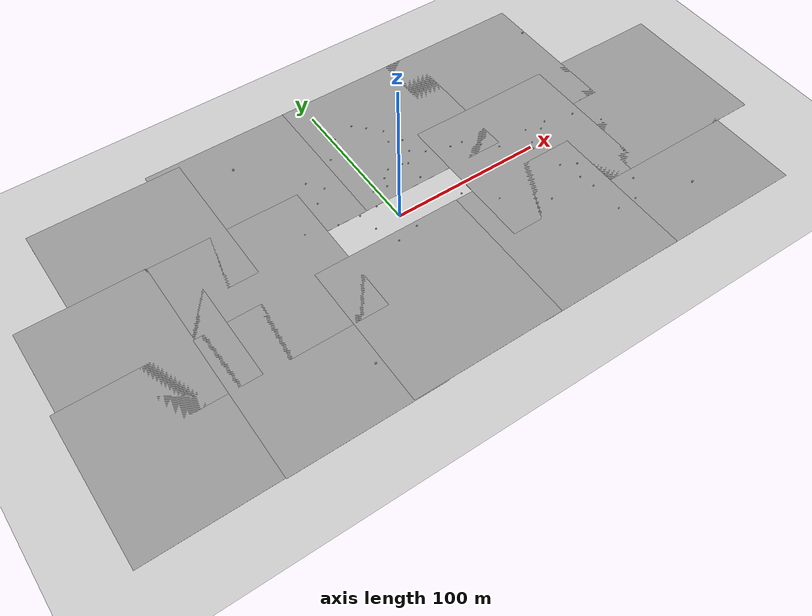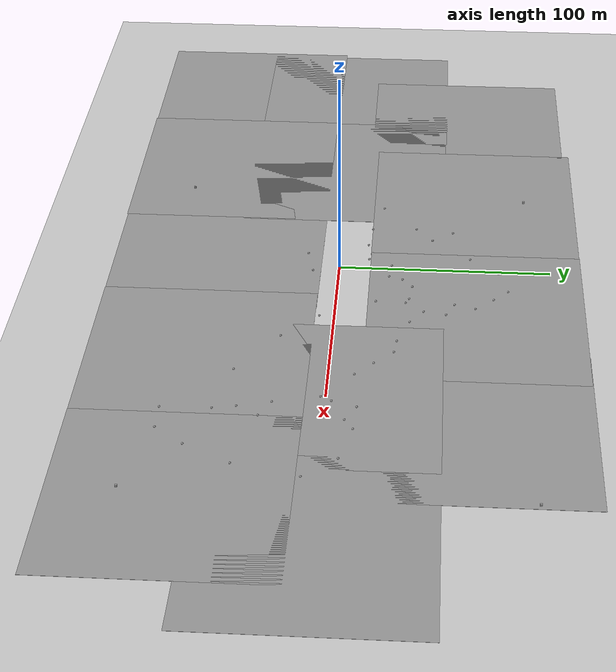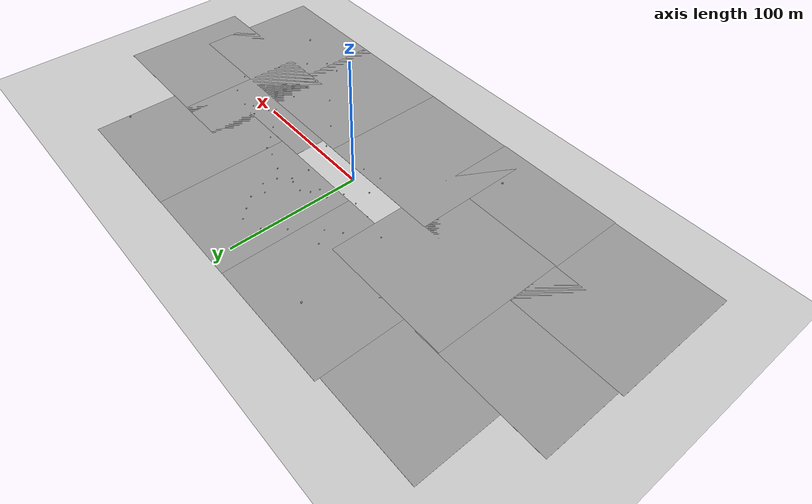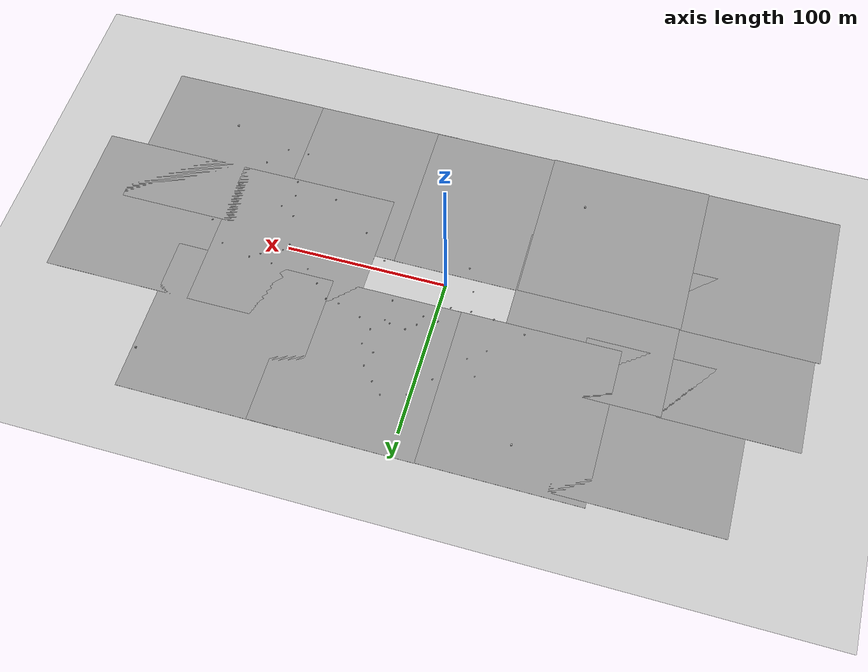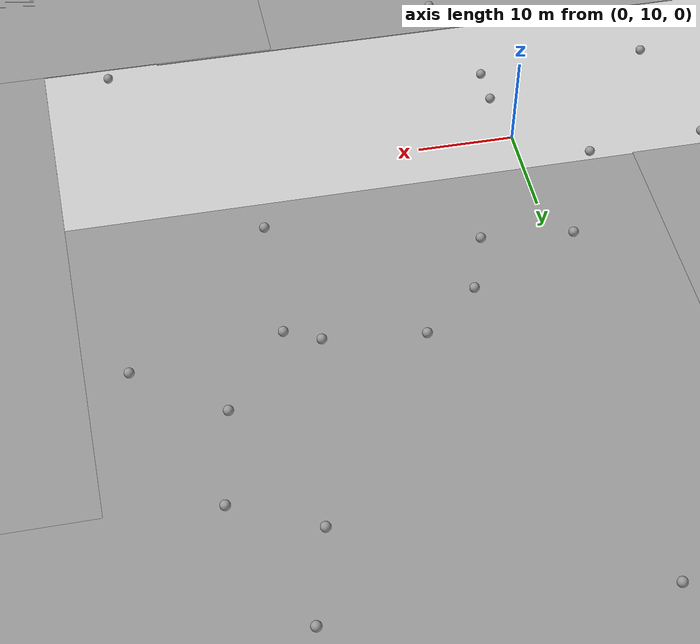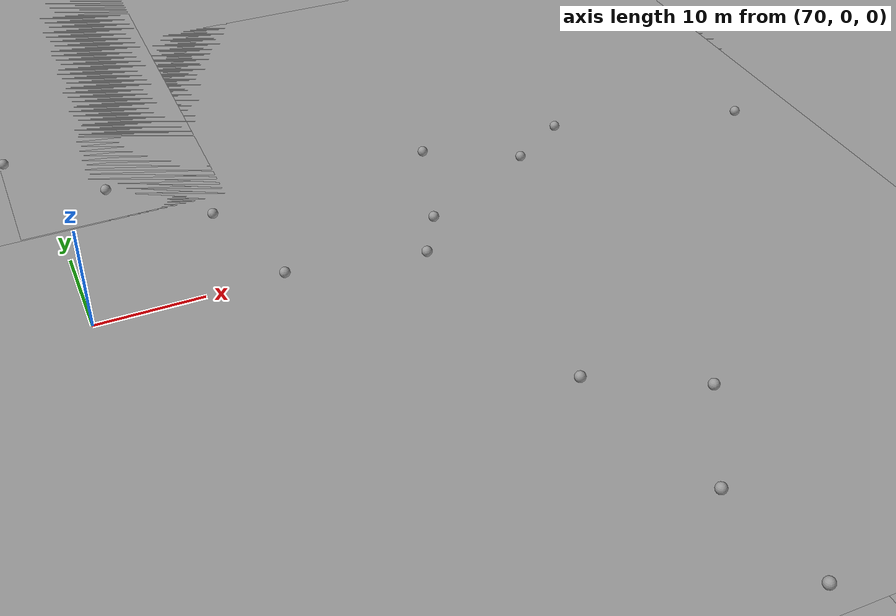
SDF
<sdf version="1.7">
 <world name="default">
  <light name="sun" type="directional">
   <pose>0 0 10 0 -0 0</pose>
   <diffuse>0.8 0.8 0.8 1</diffuse>
   <specular>0.2 0.2 0.2 1</specular>
   <attenuation>
    <range>1000</range>
    <constant>0.9</constant>
    <linear>0.01</linear>
    <quadratic>0.001</quadratic>
   </attenuation>
   <direction>-0.5 0.1 -0.9</direction>
   <spot><inner_angle>0</inner_angle><outer_angle>0</outer_angle><falloff>0</falloff></spot>
  </light>
  <model name="ground_plane">
   <static>1</static>
   <link name="link">
    <collision name="collision">
     <geometry><plane><normal>0 0 1</normal><size>100 100</size></plane></geometry>
     <surface><friction><ode><mu>100</mu><mu2>50</mu2></ode></friction></surface>
    </collision>
    <visual name="visual">
     <cast_shadows>0</cast_shadows>
     <geometry><plane><normal>0 0 1</normal><size>100 100</size></plane></geometry>
     <material>
      <script><uri>file://media/materials/scripts/gazebo.material</uri><name>Gazebo/Grey</name></script>
     </material>
    </visual>
   </link>
  </model>
  <gravity>0 0 -9.8</gravity>
  <magnetic_field>6e-06 2.3e-05 -4.2e-05</magnetic_field>
  <atmosphere type="adiabatic"/>
  <physics name="default_physics" default="0" type="ode">
   <max_step_size>0.001</max_step_size>
   <real_time_factor>1</real_time_factor>
   <real_time_update_rate>1000</real_time_update_rate>
  </physics>
  <scene><ambient>0.4 0.4 0.4 1</ambient><background>0.7 0.7 0.7 1</background><shadows>1</shadows></scene>
  <audio><device>default</device></audio>
  <spherical_coordinates>
   <surface_model>EARTH_WGS84</surface_model>
   <latitude_deg>0</latitude_deg>
   <longitude_deg>0</longitude_deg>
   <elevation>0</elevation>
   <heading_deg>0</heading_deg>
  </spherical_coordinates>
  <model name="ground_plane_0">
   <static>1</static>
   <link name="link">
    <collision name="collision">
     <geometry><plane><normal>0 0 1</normal><size>100 100</size></plane></geometry>
     <surface>
      <contact><collide_bitmask>65535</collide_bitmask></contact>
      <friction><ode><mu>100</mu><mu2>50</mu2></ode></friction>
     </surface>
    </collision>
    <visual name="visual">
     <cast_shadows>0</cast_shadows>
     <geometry><plane><normal>0 0 1</normal><size>100 100</size></plane></geometry>
     <material>
      <script><uri>file://media/materials/scripts/gazebo.material</uri><name>Gazebo/Grey</name></script>
     </material>
    </visual>
   </link>
   <pose>97.4903 0.04793 0 0 -0 0</pose>
  </model>
  <model name="ground_plane_1">
   <static>1</static>
   <link name="link">
    <collision name="collision">
     <geometry><plane><normal>0 0 1</normal><size>100 100</size></plane></geometry>
     <surface>
      <contact><collide_bitmask>65535</collide_bitmask></contact>
      <friction><ode><mu>100</mu><mu2>50</mu2></ode></friction>
     </surface>
    </collision>
    <visual name="visual">
     <cast_shadows>0</cast_shadows>
     <geometry><plane><normal>0 0 1</normal><size>100 100</size></plane></geometry>
     <material>
      <script><uri>file://media/materials/scripts/gazebo.material</uri><name>Gazebo/Grey</name></script>
     </material>
    </visual>
   </link>
   <pose>189.307 -0.037702 0 0 -0 0</pose>
  </model>
  <model name="ground_plane_2">
   <static>1</static>
   <link name="link">
    <collision name="collision">
     <geometry><plane><normal>0 0 1</normal><size>100 100</size></plane></geometry>
     <surface>
      <contact><collide_bitmask>65535</collide_bitmask></contact>
      <friction><ode><mu>100</mu><mu2>50</mu2></ode></friction>
     </surface>
    </collision>
    <visual name="visual">
     <cast_shadows>0</cast_shadows>
     <geometry><plane><normal>0 0 1</normal><size>100 100</size></plane></geometry>
     <material>
      <script><uri>file://media/materials/scripts/gazebo.material</uri><name>Gazebo/Grey</name></script>
     </material>
    </visual>
   </link>
   <pose>-91.6707 -0.132647 0 0 -0 0</pose>
  </model>
  <model name="ground_plane_3">
   <static>1</static>
   <link name="link">
    <collision name="collision">
     <geometry><plane><normal>0 0 1</normal><size>100 100</size></plane></geometry>
     <surface>
      <contact><collide_bitmask>65535</collide_bitmask></contact>
      <friction><ode><mu>100</mu><mu2>50</mu2></ode></friction>
     </surface>
    </collision>
    <visual name="visual">
     <cast_shadows>0</cast_shadows>
     <geometry><plane><normal>0 0 1</normal><size>100 100</size></plane></geometry>
     <material>
      <script><uri>file://media/materials/scripts/gazebo.material</uri><name>Gazebo/Grey</name></script>
     </material>
    </visual>
   </link>
   <pose>-171.755 0.416002 0 0 -0 0</pose>
  </model>
  <model name="ground_plane_4">
   <static>1</static>
   <link name="link">
    <collision name="collision">
     <geometry><plane><normal>0 0 1</normal><size>100 100</size></plane></geometry>
     <surface>
      <contact><collide_bitmask>65535</collide_bitmask></contact>
      <friction><ode><mu>100</mu><mu2>50</mu2></ode></friction>
     </surface>
    </collision>
    <visual name="visual">
     <cast_shadows>0</cast_shadows>
     <geometry><plane><normal>0 0 1</normal><size>100 100</size></plane></geometry>
     <material>
      <script><uri>file://media/materials/scripts/gazebo.material</uri><name>Gazebo/Grey</name></script>
     </material>
    </visual>
   </link>
   <pose>-92.4556 -59.0521 0 0 -0 0</pose>
  </model>
  <model name="ground_plane_5">
   <static>1</static>
   <link name="link">
    <collision name="collision">
     <geometry><plane><normal>0 0 1</normal><size>100 100</size></plane></geometry>
     <surface>
      <contact><collide_bitmask>65535</collide_bitmask></contact>
      <friction><ode><mu>100</mu><mu2>50</mu2></ode></friction>
     </surface>
    </collision>
    <visual name="visual">
     <cast_shadows>0</cast_shadows>
     <geometry><plane><normal>0 0 1</normal><size>100 100</size></plane></geometry>
     <material>
      <script><uri>file://media/materials/scripts/gazebo.material</uri><name>Gazebo/Grey</name></script>
     </material>
    </visual>
   </link>
   <pose>-14.8442 -58.6163 0 0 -0 0</pose>
  </model>
  <model name="ground_plane_6">
   <static>1</static>
   <link name="link">
    <collision name="collision">
     <geometry><plane><normal>0 0 1</normal><size>100 100</size></plane></geometry>
     <surface>
      <contact><collide_bitmask>65535</collide_bitmask></contact>
      <friction><ode><mu>100</mu><mu2>50</mu2></ode></friction>
     </surface>
    </collision>
    <visual name="visual">
     <cast_shadows>0</cast_shadows>
     <geometry><plane><normal>0 0 1</normal><size>100 100</size></plane></geometry>
     <material>
      <script><uri>file://media/materials/scripts/gazebo.material</uri><name>Gazebo/Grey</name></script>
     </material>
    </visual>
   </link>
   <pose>72.4819 -58.7857 0 0 -0 0</pose>
  </model>
  <model name="ground_plane_7">
   <static>1</static>
   <link name="link">
    <collision name="collision">
     <geometry><plane><normal>0 0 1</normal><size>100 100</size></plane></geometry>
     <surface>
      <contact><collide_bitmask>65535</collide_bitmask></contact>
      <friction><ode><mu>100</mu><mu2>50</mu2></ode></friction>
     </surface>
    </collision>
    <visual name="visual">
     <cast_shadows>0</cast_shadows>
     <geometry><plane><normal>0 0 1</normal><size>100 100</size></plane></geometry>
     <material>
      <script><uri>file://media/materials/scripts/gazebo.material</uri><name>Gazebo/Grey</name></script>
     </material>
    </visual>
   </link>
   <pose>164.143 -58.8841 0 0 -0 0</pose>
  </model>
  <model name="ground_plane_8">
   <static>1</static>
   <link name="link">
    <collision name="collision">
     <geometry><plane><normal>0 0 1</normal><size>100 100</size></plane></geometry>
     <surface>
      <contact><collide_bitmask>65535</collide_bitmask></contact>
      <friction><ode><mu>100</mu><mu2>50</mu2></ode></friction>
     </surface>
    </collision>
    <visual name="visual">
     <cast_shadows>0</cast_shadows>
     <geometry><plane><normal>0 0 1</normal><size>100 100</size></plane></geometry>
     <material>
      <script><uri>file://media/materials/scripts/gazebo.material</uri><name>Gazebo/Grey</name></script>
     </material>
    </visual>
   </link>
   <pose>116.309 64.9552 0 0 -0 0</pose>
  </model>
  <model name="ground_plane_9">
   <static>1</static>
   <link name="link">
    <collision name="collision">
     <geometry><plane><normal>0 0 1</normal><size>100 100</size></plane></geometry>
     <surface>
      <contact><collide_bitmask>65535</collide_bitmask></contact>
      <friction><ode><mu>100</mu><mu2>50</mu2></ode></friction>
     </surface>
    </collision>
    <visual name="visual">
     <cast_shadows>0</cast_shadows>
     <geometry><plane><normal>0 0 1</normal><size>100 100</size></plane></geometry>
     <material>
      <script><uri>file://media/materials/scripts/gazebo.material</uri><name>Gazebo/Grey</name></script>
     </material>
    </visual>
   </link>
   <pose>36.0215 64.7784 0 0 -0 0</pose>
  </model>
  <model name="ground_plane_10">
   <static>1</static>
   <link name="link">
    <collision name="collision">
     <geometry><plane><normal>0 0 1</normal><size>100 100</size></plane></geometry>
     <surface>
      <contact><collide_bitmask>65535</collide_bitmask></contact>
      <friction><ode><mu>100</mu><mu2>50</mu2></ode></friction>
     </surface>
    </collision>
    <visual name="visual">
     <cast_shadows>0</cast_shadows>
     <geometry><plane><normal>0 0 1</normal><size>100 100</size></plane></geometry>
     <material>
      <script><uri>file://media/materials/scripts/gazebo.material</uri><name>Gazebo/Grey</name></script>
     </material>
    </visual>
   </link>
   <pose>-61.7703 64.6166 0 0 -0 0</pose>
  </model>
  <model name="ground_plane_11">
   <static>1</static>
   <link name="link">
    <collision name="collision">
     <geometry><plane><normal>0 0 1</normal><size>100 100</size></plane></geometry>
     <surface>
      <contact><collide_bitmask>65535</collide_bitmask></contact>
      <friction><ode><mu>100</mu><mu2>50</mu2></ode></friction>
     </surface>
    </collision>
    <visual name="visual">
     <cast_shadows>0</cast_shadows>
     <geometry><plane><normal>0 0 1</normal><size>100 100</size></plane></geometry>
     <material>
      <script><uri>file://media/materials/scripts/gazebo.material</uri><name>Gazebo/Grey</name></script>
     </material>
    </visual>
   </link>
   <pose>-140.039 61.2243 0 0 -0 0</pose>
  </model>
  <model name="ground_plane_12">
   <static>1</static>
   <link name="link">
    <collision name="collision">
     <geometry><plane><normal>0 0 1</normal><size>100 100</size></plane></geometry>
     <surface>
      <contact><collide_bitmask>65535</collide_bitmask></contact>
      <friction><ode><mu>100</mu><mu2>50</mu2></ode></friction>
     </surface>
    </collision>
    <visual name="visual">
     <cast_shadows>0</cast_shadows>
     <geometry><plane><normal>0 0 1</normal><size>100 100</size></plane></geometry>
     <material>
      <script><uri>file://media/materials/scripts/gazebo.material</uri><name>Gazebo/Grey</name></script>
     </material>
    </visual>
   </link>
   <pose>-174.805 -58.5343 0 0 -0 0</pose>
  </model>
  <model name="unit_sphere">
   <pose>0.873686 4.14564 0.499991 0 -0 0</pose>
   <link name="link">
    <inertial>
     <mass>1</mass>
     <inertia><ixx>0.1</ixx><ixy>0</ixy><ixz>0</ixz><iyy>0.1</iyy><iyz>0</iyz><izz>0.1</izz></inertia>
    </inertial>
    <collision name="collision"><geometry><sphere><radius>0.5</radius></sphere></geometry></collision>
    <visual name="visual">
     <geometry><sphere><radius>0.5</radius></sphere></geometry>
     <material>
      <script><name>Gazebo/Grey</name><uri>file://media/materials/scripts/gazebo.material</uri></script>
     </material>
    </visual>
   </link>
  </model>
  <model name="unit_sphere_0">
   <pose>-7.28606 14.0254 0.499991 0 -0 0</pose>
   <link name="link">
    <inertial>
     <mass>1</mass>
     <inertia><ixx>0.1</ixx><ixy>0</ixy><ixz>0</ixz><iyy>0.1</iyy><iyz>0</iyz><izz>0.1</izz></inertia>
    </inertial>
    <collision name="collision"><geometry><sphere><radius>0.5</radius></sphere></geometry></collision>
    <visual name="visual">
     <geometry><sphere><radius>0.5</radius></sphere></geometry>
     <material>
      <script><name>Gazebo/Grey</name><uri>file://media/materials/scripts/gazebo.material</uri></script>
     </material>
    </visual>
   </link>
  </model>
  <model name="unit_sphere_1">
   <pose>-2.34583 24.9268 0.499991 0 -0 0</pose>
   <link name="link">
    <inertial>
     <mass>1</mass>
     <inertia><ixx>0.1</ixx><ixy>0</ixy><ixz>0</ixz><iyy>0.1</iyy><iyz>0</iyz><izz>0.1</izz></inertia>
    </inertial>
    <collision name="collision"><geometry><sphere><radius>0.5</radius></sphere></geometry></collision>
    <visual name="visual">
     <geometry><sphere><radius>0.5</radius></sphere></geometry>
     <material>
      <script><name>Gazebo/Grey</name><uri>file://media/materials/scripts/gazebo.material</uri></script>
     </material>
    </visual>
   </link>
  </model>
  <model name="unit_sphere_2">
   <pose>6.94707 23.9704 0.499991 0 -0 0</pose>
   <link name="link">
    <inertial>
     <mass>1</mass>
     <inertia><ixx>0.1</ixx><ixy>0</ixy><ixz>0</ixz><iyy>0.1</iyy><iyz>0</iyz><izz>0.1</izz></inertia>
    </inertial>
    <collision name="collision"><geometry><sphere><radius>0.5</radius></sphere></geometry></collision>
    <visual name="visual">
     <geometry><sphere><radius>0.5</radius></sphere></geometry>
     <material>
      <script><name>Gazebo/Grey</name><uri>file://media/materials/scripts/gazebo.material</uri></script>
     </material>
    </visual>
   </link>
  </model>
  <model name="unit_sphere_3">
   <pose>9.19688 30.3325 0.49999 0 -0 0</pose>
   <link name="link">
    <inertial>
     <mass>1</mass>
     <inertia><ixx>0.1</ixx><ixy>0</ixy><ixz>0</ixz><iyy>0.1</iyy><iyz>0</iyz><izz>0.1</izz></inertia>
    </inertial>
    <collision name="collision"><geometry><sphere><radius>0.5</radius></sphere></geometry></collision>
    <visual name="visual">
     <geometry><sphere><radius>0.5</radius></sphere></geometry>
     <material>
      <script><name>Gazebo/Grey</name><uri>file://media/materials/scripts/gazebo.material</uri></script>
     </material>
    </visual>
   </link>
  </model>
  <model name="unit_sphere_4">
   <pose>14.987 35.0732 0.499991 0 -0 0</pose>
   <link name="link">
    <inertial>
     <mass>1</mass>
     <inertia><ixx>0.1</ixx><ixy>0</ixy><ixz>0</ixz><iyy>0.1</iyy><iyz>0</iyz><izz>0.1</izz></inertia>
    </inertial>
    <collision name="collision"><geometry><sphere><radius>0.5</radius></sphere></geometry></collision>
    <visual name="visual">
     <geometry><sphere><radius>0.5</radius></sphere></geometry>
     <material>
      <script><name>Gazebo/Grey</name><uri>file://media/materials/scripts/gazebo.material</uri></script>
     </material>
    </visual>
   </link>
  </model>
  <model name="unit_sphere_5">
   <pose>24.9475 33.9324 0.49999 0 -0 0</pose>
   <link name="link">
    <inertial>
     <mass>1</mass>
     <inertia><ixx>0.1</ixx><ixy>0</ixy><ixz>0</ixz><iyy>0.1</iyy><iyz>0</iyz><izz>0.1</izz></inertia>
    </inertial>
    <collision name="collision"><geometry><sphere><radius>0.5</radius></sphere></geometry></collision>
    <visual name="visual">
     <geometry><sphere><radius>0.5</radius></sphere></geometry>
     <material>
      <script><name>Gazebo/Grey</name><uri>file://media/materials/scripts/gazebo.material</uri></script>
     </material>
    </visual>
   </link>
  </model>
  <model name="unit_sphere_6">
   <pose>28.3708 32.3225 0.499991 0 -0 0</pose>
   <link name="link">
    <inertial>
     <mass>1</mass>
     <inertia><ixx>0.1</ixx><ixy>0</ixy><ixz>0</ixz><iyy>0.1</iyy><iyz>0</iyz><izz>0.1</izz></inertia>
    </inertial>
    <collision name="collision"><geometry><sphere><radius>0.5</radius></sphere></geometry></collision>
    <visual name="visual">
     <geometry><sphere><radius>0.5</radius></sphere></geometry>
     <material>
      <script><name>Gazebo/Grey</name><uri>file://media/materials/scripts/gazebo.material</uri></script>
     </material>
    </visual>
   </link>
  </model>
  <model name="unit_sphere_7">
   <pose>27.8325 18.4839 0.499991 0 -0 0</pose>
   <link name="link">
    <inertial>
     <mass>1</mass>
     <inertia><ixx>0.1</ixx><ixy>0</ixy><ixz>0</ixz><iyy>0.1</iyy><iyz>0</iyz><izz>0.1</izz></inertia>
    </inertial>
    <collision name="collision"><geometry><sphere><radius>0.5</radius></sphere></geometry></collision>
    <visual name="visual">
     <geometry><sphere><radius>0.5</radius></sphere></geometry>
     <material>
      <script><name>Gazebo/Grey</name><uri>file://media/materials/scripts/gazebo.material</uri></script>
     </material>
    </visual>
   </link>
  </model>
  <model name="unit_sphere_8">
   <pose>40.6852 -6.81454 0.499991 0 -0 0</pose>
   <link name="link">
    <inertial>
     <mass>1</mass>
     <inertia><ixx>0.1</ixx><ixy>0</ixy><ixz>0</ixz><iyy>0.1</iyy><iyz>0</iyz><izz>0.1</izz></inertia>
    </inertial>
    <collision name="collision"><geometry><sphere><radius>0.5</radius></sphere></geometry></collision>
    <visual name="visual">
     <geometry><sphere><radius>0.5</radius></sphere></geometry>
     <material>
      <script><name>Gazebo/Grey</name><uri>file://media/materials/scripts/gazebo.material</uri></script>
     </material>
    </visual>
   </link>
  </model>
  <model name="unit_sphere_9">
   <pose>57.2245 -23.1237 0.499991 0 -0 0</pose>
   <link name="link">
    <inertial>
     <mass>1</mass>
     <inertia><ixx>0.1</ixx><ixy>0</ixy><ixz>0</ixz><iyy>0.1</iyy><iyz>0</iyz><izz>0.1</izz></inertia>
    </inertial>
    <collision name="collision"><geometry><sphere><radius>0.5</radius></sphere></geometry></collision>
    <visual name="visual">
     <geometry><sphere><radius>0.5</radius></sphere></geometry>
     <material>
      <script><name>Gazebo/Grey</name><uri>file://media/materials/scripts/gazebo.material</uri></script>
     </material>
    </visual>
   </link>
  </model>
  <model name="unit_sphere_10">
   <pose>83.0947 -41.4276 0.499991 0 -0 0</pose>
   <link name="link">
    <inertial>
     <mass>1</mass>
     <inertia><ixx>0.1</ixx><ixy>0</ixy><ixz>0</ixz><iyy>0.1</iyy><iyz>0</iyz><izz>0.1</izz></inertia>
    </inertial>
    <collision name="collision"><geometry><sphere><radius>0.5</radius></sphere></geometry></collision>
    <visual name="visual">
     <geometry><sphere><radius>0.5</radius></sphere></geometry>
     <material>
      <script><name>Gazebo/Grey</name><uri>file://media/materials/scripts/gazebo.material</uri></script>
     </material>
    </visual>
   </link>
  </model>
  <model name="unit_sphere_11">
   <pose>105.108 -22.6742 0.499991 0 -0 0</pose>
   <link name="link">
    <inertial>
     <mass>1</mass>
     <inertia><ixx>0.1</ixx><ixy>0</ixy><ixz>0</ixz><iyy>0.1</iyy><iyz>0</iyz><izz>0.1</izz></inertia>
    </inertial>
    <collision name="collision"><geometry><sphere><radius>0.5</radius></sphere></geometry></collision>
    <visual name="visual">
     <geometry><sphere><radius>0.5</radius></sphere></geometry>
     <material>
      <script><name>Gazebo/Grey</name><uri>file://media/materials/scripts/gazebo.material</uri></script>
     </material>
    </visual>
   </link>
  </model>
  <model name="unit_sphere_12">
   <pose>114.612 -27.7405 0.499991 0 -0 0</pose>
   <link name="link">
    <inertial>
     <mass>1</mass>
     <inertia><ixx>0.1</ixx><ixy>0</ixy><ixz>0</ixz><iyy>0.1</iyy><iyz>0</iyz><izz>0.1</izz></inertia>
    </inertial>
    <collision name="collision"><geometry><sphere><radius>0.5</radius></sphere></geometry></collision>
    <visual name="visual">
     <geometry><sphere><radius>0.5</radius></sphere></geometry>
     <material>
      <script><name>Gazebo/Grey</name><uri>file://media/materials/scripts/gazebo.material</uri></script>
     </material>
    </visual>
   </link>
  </model>
  <model name="unit_sphere_13">
   <pose>108.83 -37.4611 0.499991 0 -0 0</pose>
   <link name="link">
    <inertial>
     <mass>1</mass>
     <inertia><ixx>0.1</ixx><ixy>0</ixy><ixz>0</ixz><iyy>0.1</iyy><iyz>0</iyz><izz>0.1</izz></inertia>
    </inertial>
    <collision name="collision"><geometry><sphere><radius>0.5</radius></sphere></geometry></collision>
    <visual name="visual">
     <geometry><sphere><radius>0.5</radius></sphere></geometry>
     <material>
      <script><name>Gazebo/Grey</name><uri>file://media/materials/scripts/gazebo.material</uri></script>
     </material>
    </visual>
   </link>
  </model>
  <model name="unit_sphere_14">
   <pose>110.755 -47.7004 0.499991 0 -0 0</pose>
   <link name="link">
    <inertial>
     <mass>1</mass>
     <inertia><ixx>0.1</ixx><ixy>0</ixy><ixz>0</ixz><iyy>0.1</iyy><iyz>0</iyz><izz>0.1</izz></inertia>
    </inertial>
    <collision name="collision"><geometry><sphere><radius>0.5</radius></sphere></geometry></collision>
    <visual name="visual">
     <geometry><sphere><radius>0.5</radius></sphere></geometry>
     <material>
      <script><name>Gazebo/Grey</name><uri>file://media/materials/scripts/gazebo.material</uri></script>
     </material>
    </visual>
   </link>
  </model>
  <model name="unit_sphere_15">
   <pose>111.287 -70.0037 0.499991 0 -0 0</pose>
   <link name="link">
    <inertial>
     <mass>1</mass>
     <inertia><ixx>0.1</ixx><ixy>0</ixy><ixz>0</ixz><iyy>0.1</iyy><iyz>0</iyz><izz>0.1</izz></inertia>
    </inertial>
    <collision name="collision"><geometry><sphere><radius>0.5</radius></sphere></geometry></collision>
    <visual name="visual">
     <geometry><sphere><radius>0.5</radius></sphere></geometry>
     <material>
      <script><name>Gazebo/Grey</name><uri>file://media/materials/scripts/gazebo.material</uri></script>
     </material>
    </visual>
   </link>
  </model>
  <model name="unit_sphere_16">
   <pose>124.76 -69.9648 0.499991 0 -0 0</pose>
   <link name="link">
    <inertial>
     <mass>1</mass>
     <inertia><ixx>0.1</ixx><ixy>0</ixy><ixz>0</ixz><iyy>0.1</iyy><iyz>0</iyz><izz>0.1</izz></inertia>
    </inertial>
    <collision name="collision"><geometry><sphere><radius>0.5</radius></sphere></geometry></collision>
    <visual name="visual">
     <geometry><sphere><radius>0.5</radius></sphere></geometry>
     <material>
      <script><name>Gazebo/Grey</name><uri>file://media/materials/scripts/gazebo.material</uri></script>
     </material>
    </visual>
   </link>
  </model>
  <model name="unit_sphere_17">
   <pose>134.987 -56.8676 0.499991 0 -0 0</pose>
   <link name="link">
    <inertial>
     <mass>1</mass>
     <inertia><ixx>0.1</ixx><ixy>0</ixy><ixz>0</ixz><iyy>0.1</iyy><iyz>0</iyz><izz>0.1</izz></inertia>
    </inertial>
    <collision name="collision"><geometry><sphere><radius>0.5</radius></sphere></geometry></collision>
    <visual name="visual">
     <geometry><sphere><radius>0.5</radius></sphere></geometry>
     <material>
      <script><name>Gazebo/Grey</name><uri>file://media/materials/scripts/gazebo.material</uri></script>
     </material>
    </visual>
   </link>
  </model>
  <model name="unit_sphere_18">
   <pose>146.049 -35.9428 0.499991 0 -0 0</pose>
   <link name="link">
    <inertial>
     <mass>1</mass>
     <inertia><ixx>0.1</ixx><ixy>0</ixy><ixz>0</ixz><iyy>0.1</iyy><iyz>0</iyz><izz>0.1</izz></inertia>
    </inertial>
    <collision name="collision"><geometry><sphere><radius>0.5</radius></sphere></geometry></collision>
    <visual name="visual">
     <geometry><sphere><radius>0.5</radius></sphere></geometry>
     <material>
      <script><name>Gazebo/Grey</name><uri>file://media/materials/scripts/gazebo.material</uri></script>
     </material>
    </visual>
   </link>
  </model>
  <model name="unit_sphere_19">
   <pose>152.699 -6.65424 0.499991 0 -0 0</pose>
   <link name="link">
    <inertial>
     <mass>1</mass>
     <inertia><ixx>0.1</ixx><ixy>0</ixy><ixz>0</ixz><iyy>0.1</iyy><iyz>0</iyz><izz>0.1</izz></inertia>
    </inertial>
    <collision name="collision"><geometry><sphere><radius>0.5</radius></sphere></geometry></collision>
    <visual name="visual">
     <geometry><sphere><radius>0.5</radius></sphere></geometry>
     <material>
      <script><name>Gazebo/Grey</name><uri>file://media/materials/scripts/gazebo.material</uri></script>
     </material>
    </visual>
   </link>
  </model>
  <model name="unit_sphere_20">
   <pose>140.655 7.75466 0.499991 0 -0 0</pose>
   <link name="link">
    <inertial>
     <mass>1</mass>
     <inertia><ixx>0.1</ixx><ixy>0</ixy><ixz>0</ixz><iyy>0.1</iyy><iyz>0</iyz><izz>0.1</izz></inertia>
    </inertial>
    <collision name="collision"><geometry><sphere><radius>0.5</radius></sphere></geometry></collision>
    <visual name="visual">
     <geometry><sphere><radius>0.5</radius></sphere></geometry>
     <material>
      <script><name>Gazebo/Grey</name><uri>file://media/materials/scripts/gazebo.material</uri></script>
     </material>
    </visual>
   </link>
  </model>
  <model name="unit_sphere_21">
   <pose>121.404 12.7055 0.499991 0 -0 0</pose>
   <link name="link">
    <inertial>
     <mass>1</mass>
     <inertia><ixx>0.1</ixx><ixy>0</ixy><ixz>0</ixz><iyy>0.1</iyy><iyz>0</iyz><izz>0.1</izz></inertia>
    </inertial>
    <collision name="collision"><geometry><sphere><radius>0.5</radius></sphere></geometry></collision>
    <visual name="visual">
     <geometry><sphere><radius>0.5</radius></sphere></geometry>
     <material>
      <script><name>Gazebo/Grey</name><uri>file://media/materials/scripts/gazebo.material</uri></script>
     </material>
    </visual>
   </link>
  </model>
  <model name="unit_sphere_22">
   <pose>115.46 8.84893 0.499991 0 -0 0</pose>
   <link name="link">
    <inertial>
     <mass>1</mass>
     <inertia><ixx>0.1</ixx><ixy>0</ixy><ixz>0</ixz><iyy>0.1</iyy><iyz>0</iyz><izz>0.1</izz></inertia>
    </inertial>
    <collision name="collision"><geometry><sphere><radius>0.5</radius></sphere></geometry></collision>
    <visual name="visual">
     <geometry><sphere><radius>0.5</radius></sphere></geometry>
     <material>
      <script><name>Gazebo/Grey</name><uri>file://media/materials/scripts/gazebo.material</uri></script>
     </material>
    </visual>
   </link>
  </model>
  <model name="unit_sphere_23">
   <pose>106.642 13.6283 0.49999 0 -0 0</pose>
   <link name="link">
    <inertial>
     <mass>1</mass>
     <inertia><ixx>0.1</ixx><ixy>0</ixy><ixz>0</ixz><iyy>0.1</iyy><iyz>0</iyz><izz>0.1</izz></inertia>
    </inertial>
    <collision name="collision"><geometry><sphere><radius>0.5</radius></sphere></geometry></collision>
    <visual name="visual">
     <geometry><sphere><radius>0.5</radius></sphere></geometry>
     <material>
      <script><name>Gazebo/Grey</name><uri>file://media/materials/scripts/gazebo.material</uri></script>
     </material>
    </visual>
   </link>
  </model>
  <model name="unit_sphere_24">
   <pose>103.109 2.62302 0.49999 0 -0 0</pose>
   <link name="link">
    <inertial>
     <mass>1</mass>
     <inertia><ixx>0.1</ixx><ixy>0</ixy><ixz>0</ixz><iyy>0.1</iyy><iyz>0</iyz><izz>0.1</izz></inertia>
    </inertial>
    <collision name="collision"><geometry><sphere><radius>0.5</radius></sphere></geometry></collision>
    <visual name="visual">
     <geometry><sphere><radius>0.5</radius></sphere></geometry>
     <material>
      <script><name>Gazebo/Grey</name><uri>file://media/materials/scripts/gazebo.material</uri></script>
     </material>
    </visual>
   </link>
  </model>
  <model name="unit_sphere_25">
   <pose>100.342 -2.1866 0.499991 0 -0 0</pose>
   <link name="link">
    <inertial>
     <mass>1</mass>
     <inertia><ixx>0.1</ixx><ixy>0</ixy><ixz>0</ixz><iyy>0.1</iyy><iyz>0</iyz><izz>0.1</izz></inertia>
    </inertial>
    <collision name="collision"><geometry><sphere><radius>0.5</radius></sphere></geometry></collision>
    <visual name="visual">
     <geometry><sphere><radius>0.5</radius></sphere></geometry>
     <material>
      <script><name>Gazebo/Grey</name><uri>file://media/materials/scripts/gazebo.material</uri></script>
     </material>
    </visual>
   </link>
  </model>
  <model name="unit_sphere_26">
   <pose>87.3383 -0.015186 0.499991 0 -0 0</pose>
   <link name="link">
    <inertial>
     <mass>1</mass>
     <inertia><ixx>0.1</ixx><ixy>0</ixy><ixz>0</ixz><iyy>0.1</iyy><iyz>0</iyz><izz>0.1</izz></inertia>
    </inertial>
    <collision name="collision"><geometry><sphere><radius>0.5</radius></sphere></geometry></collision>
    <visual name="visual">
     <geometry><sphere><radius>0.5</radius></sphere></geometry>
     <material>
      <script><name>Gazebo/Grey</name><uri>file://media/materials/scripts/gazebo.material</uri></script>
     </material>
    </visual>
   </link>
  </model>
  <model name="unit_sphere_27">
   <pose>83.8664 11.4387 0.499991 0 -0 0</pose>
   <link name="link">
    <inertial>
     <mass>1</mass>
     <inertia><ixx>0.1</ixx><ixy>0</ixy><ixz>0</ixz><iyy>0.1</iyy><iyz>0</iyz><izz>0.1</izz></inertia>
    </inertial>
    <collision name="collision"><geometry><sphere><radius>0.5</radius></sphere></geometry></collision>
    <visual name="visual">
     <geometry><sphere><radius>0.5</radius></sphere></geometry>
     <material>
      <script><name>Gazebo/Grey</name><uri>file://media/materials/scripts/gazebo.material</uri></script>
     </material>
    </visual>
   </link>
  </model>
  <model name="unit_sphere_28">
   <pose>75.2939 19.5249 0.499991 0 -0 0</pose>
   <link name="link">
    <inertial>
     <mass>1</mass>
     <inertia><ixx>0.1</ixx><ixy>0</ixy><ixz>0</ixz><iyy>0.1</iyy><iyz>0</iyz><izz>0.1</izz></inertia>
    </inertial>
    <collision name="collision"><geometry><sphere><radius>0.5</radius></sphere></geometry></collision>
    <visual name="visual">
     <geometry><sphere><radius>0.5</radius></sphere></geometry>
     <material>
      <script><name>Gazebo/Grey</name><uri>file://media/materials/scripts/gazebo.material</uri></script>
     </material>
    </visual>
   </link>
  </model>
  <model name="unit_sphere_29">
   <pose>66.7602 28.1588 0.499991 0 -0 0</pose>
   <link name="link">
    <inertial>
     <mass>1</mass>
     <inertia><ixx>0.1</ixx><ixy>0</ixy><ixz>0</ixz><iyy>0.1</iyy><iyz>0</iyz><izz>0.1</izz></inertia>
    </inertial>
    <collision name="collision"><geometry><sphere><radius>0.5</radius></sphere></geometry></collision>
    <visual name="visual">
     <geometry><sphere><radius>0.5</radius></sphere></geometry>
     <material>
      <script><name>Gazebo/Grey</name><uri>file://media/materials/scripts/gazebo.material</uri></script>
     </material>
    </visual>
   </link>
  </model>
  <model name="unit_sphere_30">
   <pose>58.4101 29.1567 0.499991 0 -0 0</pose>
   <link name="link">
    <inertial>
     <mass>1</mass>
     <inertia><ixx>0.1</ixx><ixy>0</ixy><ixz>0</ixz><iyy>0.1</iyy><iyz>0</iyz><izz>0.1</izz></inertia>
    </inertial>
    <collision name="collision"><geometry><sphere><radius>0.5</radius></sphere></geometry></collision>
    <visual name="visual">
     <geometry><sphere><radius>0.5</radius></sphere></geometry>
     <material>
      <script><name>Gazebo/Grey</name><uri>file://media/materials/scripts/gazebo.material</uri></script>
     </material>
    </visual>
   </link>
  </model>
  <model name="unit_sphere_31">
   <pose>43.3144 34.5903 0.499991 0 -0 0</pose>
   <link name="link">
    <inertial>
     <mass>1</mass>
     <inertia><ixx>0.1</ixx><ixy>0</ixy><ixz>0</ixz><iyy>0.1</iyy><iyz>0</iyz><izz>0.1</izz></inertia>
    </inertial>
    <collision name="collision"><geometry><sphere><radius>0.5</radius></sphere></geometry></collision>
    <visual name="visual">
     <geometry><sphere><radius>0.5</radius></sphere></geometry>
     <material>
      <script><name>Gazebo/Grey</name><uri>file://media/materials/scripts/gazebo.material</uri></script>
     </material>
    </visual>
   </link>
  </model>
  <model name="unit_sphere_32">
   <pose>34.9304 40.7192 0.49999 0 -0 0</pose>
   <link name="link">
    <inertial>
     <mass>1</mass>
     <inertia><ixx>0.1</ixx><ixy>0</ixy><ixz>0</ixz><iyy>0.1</iyy><iyz>0</iyz><izz>0.1</izz></inertia>
    </inertial>
    <collision name="collision"><geometry><sphere><radius>0.5</radius></sphere></geometry></collision>
    <visual name="visual">
     <geometry><sphere><radius>0.5</radius></sphere></geometry>
     <material>
      <script><name>Gazebo/Grey</name><uri>file://media/materials/scripts/gazebo.material</uri></script>
     </material>
    </visual>
   </link>
  </model>
  <model name="unit_sphere_33">
   <pose>36.8274 51.0473 0.499991 0 -0 0</pose>
   <link name="link">
    <inertial>
     <mass>1</mass>
     <inertia><ixx>0.1</ixx><ixy>0</ixy><ixz>0</ixz><iyy>0.1</iyy><iyz>0</iyz><izz>0.1</izz></inertia>
    </inertial>
    <collision name="collision"><geometry><sphere><radius>0.5</radius></sphere></geometry></collision>
    <visual name="visual">
     <geometry><sphere><radius>0.5</radius></sphere></geometry>
     <material>
      <script><name>Gazebo/Grey</name><uri>file://media/materials/scripts/gazebo.material</uri></script>
     </material>
    </visual>
   </link>
  </model>
  <model name="unit_sphere_34">
   <pose>28.6442 54.9434 0.499991 0 -0 0</pose>
   <link name="link">
    <inertial>
     <mass>1</mass>
     <inertia><ixx>0.1</ixx><ixy>0</ixy><ixz>0</ixz><iyy>0.1</iyy><iyz>0</iyz><izz>0.1</izz></inertia>
    </inertial>
    <collision name="collision"><geometry><sphere><radius>0.5</radius></sphere></geometry></collision>
    <visual name="visual">
     <geometry><sphere><radius>0.5</radius></sphere></geometry>
     <material>
      <script><name>Gazebo/Grey</name><uri>file://media/materials/scripts/gazebo.material</uri></script>
     </material>
    </visual>
   </link>
  </model>
  <model name="unit_sphere_35">
   <pose>31.2863 64.5017 0.499991 0 -0 0</pose>
   <link name="link">
    <inertial>
     <mass>1</mass>
     <inertia><ixx>0.1</ixx><ixy>0</ixy><ixz>0</ixz><iyy>0.1</iyy><iyz>0</iyz><izz>0.1</izz></inertia>
    </inertial>
    <collision name="collision"><geometry><sphere><radius>0.5</radius></sphere></geometry></collision>
    <visual name="visual">
     <geometry><sphere><radius>0.5</radius></sphere></geometry>
     <material>
      <script><name>Gazebo/Grey</name><uri>file://media/materials/scripts/gazebo.material</uri></script>
     </material>
    </visual>
   </link>
  </model>
  <model name="unit_sphere_36">
   <pose>23.7149 73.0346 0.499991 0 -0 0</pose>
   <link name="link">
    <inertial>
     <mass>1</mass>
     <inertia><ixx>0.1</ixx><ixy>0</ixy><ixz>0</ixz><iyy>0.1</iyy><iyz>0</iyz><izz>0.1</izz></inertia>
    </inertial>
    <collision name="collision"><geometry><sphere><radius>0.5</radius></sphere></geometry></collision>
    <visual name="visual">
     <geometry><sphere><radius>0.5</radius></sphere></geometry>
     <material>
      <script><name>Gazebo/Grey</name><uri>file://media/materials/scripts/gazebo.material</uri></script>
     </material>
    </visual>
   </link>
  </model>
  <model name="unit_sphere_37">
   <pose>16.7986 79.8506 0.499991 0 -0 0</pose>
   <link name="link">
    <inertial>
     <mass>1</mass>
     <inertia><ixx>0.1</ixx><ixy>0</ixy><ixz>0</ixz><iyy>0.1</iyy><iyz>0</iyz><izz>0.1</izz></inertia>
    </inertial>
    <collision name="collision"><geometry><sphere><radius>0.5</radius></sphere></geometry></collision>
    <visual name="visual">
     <geometry><sphere><radius>0.5</radius></sphere></geometry>
     <material>
      <script><name>Gazebo/Grey</name><uri>file://media/materials/scripts/gazebo.material</uri></script>
     </material>
    </visual>
   </link>
  </model>
  <model name="unit_sphere_38">
   <pose>1.8245 75.7043 0.49999 0 -0 0</pose>
   <link name="link">
    <inertial>
     <mass>1</mass>
     <inertia><ixx>0.1</ixx><ixy>0</ixy><ixz>0</ixz><iyy>0.1</iyy><iyz>0</iyz><izz>0.1</izz></inertia>
    </inertial>
    <collision name="collision"><geometry><sphere><radius>0.5</radius></sphere></geometry></collision>
    <visual name="visual">
     <geometry><sphere><radius>0.5</radius></sphere></geometry>
     <material>
      <script><name>Gazebo/Grey</name><uri>file://media/materials/scripts/gazebo.material</uri></script>
     </material>
    </visual>
   </link>
  </model>
  <model name="unit_sphere_39">
   <pose>0.154685 66.1738 0.499991 0 -0 0</pose>
   <link name="link">
    <inertial>
     <mass>1</mass>
     <inertia><ixx>0.1</ixx><ixy>0</ixy><ixz>0</ixz><iyy>0.1</iyy><iyz>0</iyz><izz>0.1</izz></inertia>
    </inertial>
    <collision name="collision"><geometry><sphere><radius>0.5</radius></sphere></geometry></collision>
    <visual name="visual">
     <geometry><sphere><radius>0.5</radius></sphere></geometry>
     <material>
      <script><name>Gazebo/Grey</name><uri>file://media/materials/scripts/gazebo.material</uri></script>
     </material>
    </visual>
   </link>
  </model>
  <model name="unit_sphere_40">
   <pose>-9.69099 62.2959 0.499991 0 -0 0</pose>
   <link name="link">
    <inertial>
     <mass>1</mass>
     <inertia><ixx>0.1</ixx><ixy>0</ixy><ixz>0</ixz><iyy>0.1</iyy><iyz>0</iyz><izz>0.1</izz></inertia>
    </inertial>
    <collision name="collision"><geometry><sphere><radius>0.5</radius></sphere></geometry></collision>
    <visual name="visual">
     <geometry><sphere><radius>0.5</radius></sphere></geometry>
     <material>
      <script><name>Gazebo/Grey</name><uri>file://media/materials/scripts/gazebo.material</uri></script>
     </material>
    </visual>
   </link>
  </model>
  <model name="unit_sphere_41">
   <pose>-32.8395 54.0153 0.499991 0 -0 0</pose>
   <link name="link">
    <inertial>
     <mass>1</mass>
     <inertia><ixx>0.1</ixx><ixy>0</ixy><ixz>0</ixz><iyy>0.1</iyy><iyz>0</iyz><izz>0.1</izz></inertia>
    </inertial>
    <collision name="collision"><geometry><sphere><radius>0.5</radius></sphere></geometry></collision>
    <visual name="visual">
     <geometry><sphere><radius>0.5</radius></sphere></geometry>
     <material>
      <script><name>Gazebo/Grey</name><uri>file://media/materials/scripts/gazebo.material</uri></script>
     </material>
    </visual>
   </link>
  </model>
  <model name="unit_sphere_42">
   <pose>-25.5478 44.117 0.499991 0 -0 0</pose>
   <link name="link">
    <inertial>
     <mass>1</mass>
     <inertia><ixx>0.1</ixx><ixy>0</ixy><ixz>0</ixz><iyy>0.1</iyy><iyz>0</iyz><izz>0.1</izz></inertia>
    </inertial>
    <collision name="collision"><geometry><sphere><radius>0.5</radius></sphere></geometry></collision>
    <visual name="visual">
     <geometry><sphere><radius>0.5</radius></sphere></geometry>
     <material>
      <script><name>Gazebo/Grey</name><uri>file://media/materials/scripts/gazebo.material</uri></script>
     </material>
    </visual>
   </link>
  </model>
  <model name="unit_sphere_43">
   <pose>-35.3735 36.1296 0.499991 0 -0 0</pose>
   <link name="link">
    <inertial>
     <mass>1</mass>
     <inertia><ixx>0.1</ixx><ixy>0</ixy><ixz>0</ixz><iyy>0.1</iyy><iyz>0</iyz><izz>0.1</izz></inertia>
    </inertial>
    <collision name="collision"><geometry><sphere><radius>0.5</radius></sphere></geometry></collision>
    <visual name="visual">
     <geometry><sphere><radius>0.5</radius></sphere></geometry>
     <material>
      <script><name>Gazebo/Grey</name><uri>file://media/materials/scripts/gazebo.material</uri></script>
     </material>
    </visual>
   </link>
  </model>
  <model name="unit_sphere_44">
   <pose>-54.0936 19.6472 0.499991 0 -0 0</pose>
   <link name="link">
    <inertial>
     <mass>1</mass>
     <inertia><ixx>0.1</ixx><ixy>0</ixy><ixz>0</ixz><iyy>0.1</iyy><iyz>0</iyz><izz>0.1</izz></inertia>
    </inertial>
    <collision name="collision"><geometry><sphere><radius>0.5</radius></sphere></geometry></collision>
    <visual name="visual">
     <geometry><sphere><radius>0.5</radius></sphere></geometry>
     <material>
      <script><name>Gazebo/Grey</name><uri>file://media/materials/scripts/gazebo.material</uri></script>
     </material>
    </visual>
   </link>
  </model>
  <model name="unit_sphere_45">
   <pose>-34.0671 14.7088 0.49999 0 -0 0</pose>
   <link name="link">
    <inertial>
     <mass>1</mass>
     <inertia><ixx>0.1</ixx><ixy>0</ixy><ixz>0</ixz><iyy>0.1</iyy><iyz>0</iyz><izz>0.1</izz></inertia>
    </inertial>
    <collision name="collision"><geometry><sphere><radius>0.5</radius></sphere></geometry></collision>
    <visual name="visual">
     <geometry><sphere><radius>0.5</radius></sphere></geometry>
     <material>
      <script><name>Gazebo/Grey</name><uri>file://media/materials/scripts/gazebo.material</uri></script>
     </material>
    </visual>
   </link>
  </model>
  <model name="unit_sphere_46">
   <pose>-19.6819 13.228 0.499991 0 -0 0</pose>
   <link name="link">
    <inertial>
     <mass>1</mass>
     <inertia><ixx>0.1</ixx><ixy>0</ixy><ixz>0</ixz><iyy>0.1</iyy><iyz>0</iyz><izz>0.1</izz></inertia>
    </inertial>
    <collision name="collision"><geometry><sphere><radius>0.5</radius></sphere></geometry></collision>
    <visual name="visual">
     <geometry><sphere><radius>0.5</radius></sphere></geometry>
     <material>
      <script><name>Gazebo/Grey</name><uri>file://media/materials/scripts/gazebo.material</uri></script>
     </material>
    </visual>
   </link>
  </model>
  <model name="unit_sphere_47">
   <pose>-17.3512 -0.439923 0.499991 0 -0 0</pose>
   <link name="link">
    <inertial>
     <mass>1</mass>
     <inertia><ixx>0.1</ixx><ixy>0</ixy><ixz>0</ixz><iyy>0.1</iyy><iyz>0</iyz><izz>0.1</izz></inertia>
    </inertial>
    <collision name="collision"><geometry><sphere><radius>0.5</radius></sphere></geometry></collision>
    <visual name="visual">
     <geometry><sphere><radius>0.5</radius></sphere></geometry>
     <material>
      <script><name>Gazebo/Grey</name><uri>file://media/materials/scripts/gazebo.material</uri></script>
     </material>
    </visual>
   </link>
  </model>
  <model name="unit_sphere_48">
   <pose>-10.9964 -15.5468 0.499991 0 -0 0</pose>
   <link name="link">
    <inertial>
     <mass>1</mass>
     <inertia><ixx>0.1</ixx><ixy>0</ixy><ixz>0</ixz><iyy>0.1</iyy><iyz>0</iyz><izz>0.1</izz></inertia>
    </inertial>
    <collision name="collision"><geometry><sphere><radius>0.5</radius></sphere></geometry></collision>
    <visual name="visual">
     <geometry><sphere><radius>0.5</radius></sphere></geometry>
     <material>
      <script><name>Gazebo/Grey</name><uri>file://media/materials/scripts/gazebo.material</uri></script>
     </material>
    </visual>
   </link>
  </model>
  <model name="unit_sphere_49">
   <pose>3.73038 -12.3548 0.49999 0 -0 0</pose>
   <link name="link">
    <inertial>
     <mass>1</mass>
     <inertia><ixx>0.1</ixx><ixy>0</ixy><ixz>0</ixz><iyy>0.1</iyy><iyz>0</iyz><izz>0.1</izz></inertia>
    </inertial>
    <collision name="collision"><geometry><sphere><radius>0.5</radius></sphere></geometry></collision>
    <visual name="visual">
     <geometry><sphere><radius>0.5</radius></sphere></geometry>
     <material>
      <script><name>Gazebo/Grey</name><uri>file://media/materials/scripts/gazebo.material</uri></script>
     </material>
    </visual>
   </link>
  </model>
  <model name="unit_sphere_50">
   <pose>0.869662 0.100875 0.499991 0 -0 0</pose>
   <link name="link">
    <inertial>
     <mass>1</mass>
     <inertia><ixx>0.1</ixx><ixy>0</ixy><ixz>0</ixz><iyy>0.1</iyy><iyz>0</iyz><izz>0.1</izz></inertia>
    </inertial>
    <collision name="collision"><geometry><sphere><radius>0.5</radius></sphere></geometry></collision>
    <visual name="visual">
     <geometry><sphere><radius>0.5</radius></sphere></geometry>
     <material>
      <script><name>Gazebo/Grey</name><uri>file://media/materials/scripts/gazebo.material</uri></script>
     </material>
    </visual>
   </link>
  </model>
  <model name="unit_box">
   <pose>162.614 -79.7382 0.499999 0 -2e-06 0</pose>
   <link name="link">
    <inertial>
     <mass>1</mass>
     <inertia>
      <ixx>0.166667</ixx>
      <ixy>0</ixy>
      <ixz>0</ixz>
      <iyy>0.166667</iyy>
      <iyz>0</iyz>
      <izz>0.166667</izz>
     </inertia>
    </inertial>
    <collision name="collision"><geometry><box><size>1 1 1</size></box></geometry></collision>
    <visual name="visual">
     <geometry><box><size>1 1 1</size></box></geometry>
     <material>
      <script><name>Gazebo/Grey</name><uri>file://media/materials/scripts/gazebo.material</uri></script>
     </material>
    </visual>
   </link>
  </model>
  <model name="unit_box_0">
   <pose>164.109 89.2844 0.499996 0 -7e-06 0</pose>
   <link name="link">
    <inertial>
     <mass>1</mass>
     <inertia>
      <ixx>0.166667</ixx>
      <ixy>0</ixy>
      <ixz>0</ixz>
      <iyy>0.166667</iyy>
      <iyz>0</iyz>
      <izz>0.166667</izz>
     </inertia>
    </inertial>
    <collision name="collision"><geometry><box><size>1 1 1</size></box></geometry></collision>
    <visual name="visual">
     <geometry><box><size>1 1 1</size></box></geometry>
     <material>
      <script><name>Gazebo/Grey</name><uri>file://media/materials/scripts/gazebo.material</uri></script>
     </material>
    </visual>
   </link>
  </model>
  <model name="unit_box_1">
   <pose>-63.754 89.4785 0.499995 0 1e-05 0</pose>
   <link name="link">
    <inertial>
     <mass>1</mass>
     <inertia>
      <ixx>0.166667</ixx>
      <ixy>0</ixy>
      <ixz>0</ixz>
      <iyy>0.166667</iyy>
      <iyz>0</iyz>
      <izz>0.166667</izz>
     </inertia>
    </inertial>
    <collision name="collision"><geometry><box><size>1 1 1</size></box></geometry></collision>
    <visual name="visual">
     <geometry><box><size>1 1 1</size></box></geometry>
     <material>
      <script><name>Gazebo/Grey</name><uri>file://media/materials/scripts/gazebo.material</uri></script>
     </material>
    </visual>
   </link>
  </model>
  <model name="unit_box_2">
   <pose>-69.0577 -78.2625 0.5 0 -0 0</pose>
   <link name="link">
    <inertial>
     <mass>1</mass>
     <inertia>
      <ixx>0.166667</ixx>
      <ixy>0</ixy>
      <ixz>0</ixz>
      <iyy>0.166667</iyy>
      <iyz>0</iyz>
      <izz>0.166667</izz>
     </inertia>
    </inertial>
    <collision name="collision"><geometry><box><size>1 1 1</size></box></geometry></collision>
    <visual name="visual">
     <geometry><box><size>1 1 1</size></box></geometry>
     <material>
      <script><name>Gazebo/Grey</name><uri>file://media/materials/scripts/gazebo.material</uri></script>
     </material>
    </visual>
   </link>
  </model>
 </world>
</sdf>
